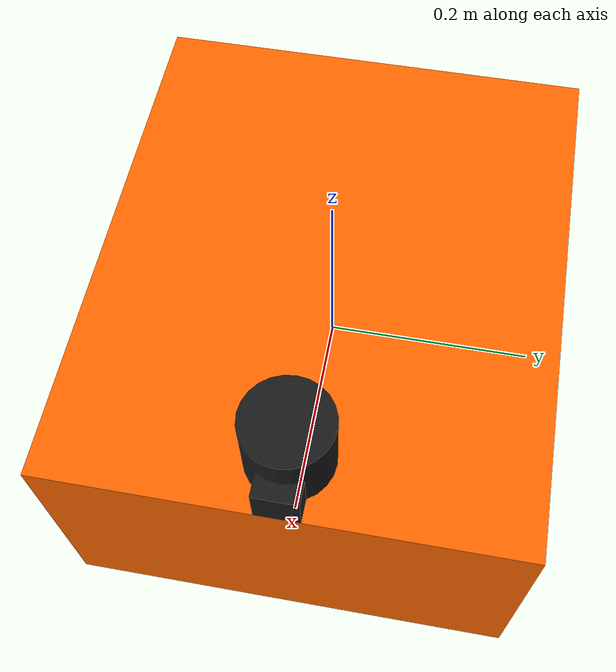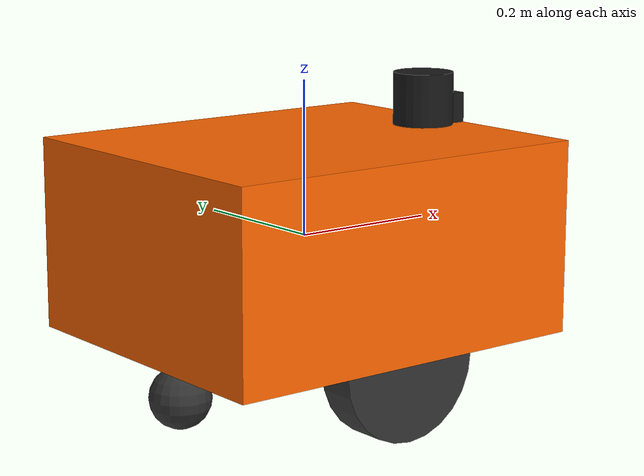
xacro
<?xml version="1.0"?>
<robot name="study_robot" xmlns:xacro="http://www.ros.org/wiki/xacro">

  <!-- Boyutlar: 0.51 x 0.43 x 0.25 m -->
  <xacro:property name="base_length" value="0.51"/>
  <xacro:property name="base_width"  value="0.43"/>
  <xacro:property name="base_height" value="0.25"/>
  <xacro:property name="wheel_radius" value="0.098"/>
  <xacro:property name="wheel_width"  value="0.05"/>
  <xacro:property name="wheel_sep"    value="0.37"/>  <!-- merkez-merkez y -->

  <!-- ============ BASE ============ -->
  <link name="base_link">
    <inertial>
      <mass value="20.0"/>
      <origin xyz="0 0 0" rpy="0 0 0"/>
      <inertia ixx="0.3" ixy="0" ixz="0"
               iyy="0.5" iyz="0"
               izz="0.6"/>
    </inertial>
    <visual>
      <origin xyz="0 0 0" rpy="0 0 0"/>
      <geometry>
        <box size="${base_length} ${base_width} ${base_height}"/>
      </geometry>
      <material name="orange">
        <color rgba="1.0 0.4 0.0 1"/>
      </material>
    </visual>
    <collision>
      <origin xyz="0 0 0" rpy="0 0 0"/>
      <geometry>
        <box size="${base_length} ${base_width} ${base_height}"/>
      </geometry>
    </collision>
  </link>

  <!-- ============ SOL TEKERLEK ============ -->
  <link name="wheel_left_link">
    <inertial>
      <mass value="1.5"/>
      <origin xyz="0 0 0" rpy="0 0 0"/>
      <inertia ixx="0.007" ixy="0" ixz="0"
               iyy="0.007" iyz="0"
               izz="0.012"/>
    </inertial>
    <visual>
      <origin xyz="0 0 0" rpy="1.5708 0 0"/>
      <geometry>
        <cylinder radius="${wheel_radius}" length="${wheel_width}"/>
      </geometry>
      <material name="dark_grey">
        <color rgba="0.2 0.2 0.2 1"/>
      </material>
    </visual>
    <collision>
      <origin xyz="0 0 0" rpy="1.5708 0 0"/>
      <geometry>
        <cylinder radius="${wheel_radius}" length="${wheel_width}"/>
      </geometry>
    </collision>
  </link>

  <joint name="wheel_left_joint" type="continuous">
    <parent link="base_link"/>
    <child  link="wheel_left_link"/>
    <origin xyz="0 ${wheel_sep/2} ${-base_height/2}" rpy="0 0 0"/>
    <axis xyz="0 1 0"/>
  </joint>

  <!-- ============ SAĞ TEKERLEK ============ -->
  <link name="wheel_right_link">
    <inertial>
      <mass value="1.5"/>
      <origin xyz="0 0 0" rpy="0 0 0"/>
      <inertia ixx="0.007" ixy="0" ixz="0"
               iyy="0.007" iyz="0"
               izz="0.012"/>
    </inertial>
    <visual>
      <origin xyz="0 0 0" rpy="1.5708 0 0"/>
      <geometry>
        <cylinder radius="${wheel_radius}" length="${wheel_width}"/>
      </geometry>
      <material name="dark_grey"/>
    </visual>
    <collision>
      <origin xyz="0 0 0" rpy="1.5708 0 0"/>
      <geometry>
        <cylinder radius="${wheel_radius}" length="${wheel_width}"/>
      </geometry>
    </collision>
  </link>

  <joint name="wheel_right_joint" type="continuous">
    <parent link="base_link"/>
    <child  link="wheel_right_link"/>
    <origin xyz="0 ${-wheel_sep/2} ${-base_height/2}" rpy="0 0 0"/>
    <axis xyz="0 1 0"/>
  </joint>

  <!-- Ön destek (caster) -->
  <link name="caster_front_link">
    <inertial>
      <mass value="0.1"/>
      <inertia ixx="0.0001" ixy="0" ixz="0"
               iyy="0.0001" iyz="0" izz="0.0001"/>
    </inertial>
    <visual>
      <geometry><sphere radius="0.04"/></geometry>
      <material name="dark_grey"/>
    </visual>
    <collision>
      <geometry><sphere radius="0.04"/></geometry>
      <surface>
        <friction><ode><mu>0.0</mu><mu2>0.0</mu2></ode></friction>
      </surface>
    </collision>
  </link>
  <joint name="caster_front_joint" type="fixed">
    <parent link="base_link"/>
    <child  link="caster_front_link"/>
    <origin xyz="${base_length/2 - 0.06} 0 ${-base_height/2 - 0.055}" rpy="0 0 0"/>
  </joint>

  <!-- Arka destek (caster) -->
  <link name="caster_back_link">
    <inertial>
      <mass value="0.1"/>
      <inertia ixx="0.0001" ixy="0" ixz="0"
               iyy="0.0001" iyz="0" izz="0.0001"/>
    </inertial>
    <visual>
      <geometry><sphere radius="0.04"/></geometry>
      <material name="dark_grey"/>
    </visual>
    <collision>
      <geometry><sphere radius="0.04"/></geometry>
      <surface>
        <friction><ode><mu>0.0</mu><mu2>0.0</mu2></ode></friction>
      </surface>
    </collision>
  </link>
  <joint name="caster_back_joint" type="fixed">
    <parent link="base_link"/>
    <child  link="caster_back_link"/>
    <origin xyz="${-(base_length/2 - 0.06)} 0 ${-base_height/2 - 0.055}" rpy="0 0 0"/>
  </joint>

  <!-- ============ LiDAR ============ -->
  <link name="lidar_link">
    <visual>
      <geometry><cylinder radius="0.04" length="0.07"/></geometry>
      <material name="black"><color rgba="0.1 0.1 0.1 1"/></material>
    </visual>
    <collision>
      <geometry><cylinder radius="0.04" length="0.07"/></geometry>
    </collision>
    <inertial>
      <mass value="0.2"/>
      <inertia ixx="0.0001" ixy="0" ixz="0"
               iyy="0.0001" iyz="0" izz="0.0001"/>
    </inertial>
  </link>
  <joint name="lidar_joint" type="fixed">
    <parent link="base_link"/>
    <child  link="lidar_link"/>
    <origin xyz="0.2 0 ${base_height/2 + 0.035}" rpy="0 0 0"/>
  </joint>

  <!-- ============ RGB KAMERA ============ -->
  <link name="camera_link">
    <visual>
      <geometry><box size="0.04 0.04 0.04"/></geometry>
      <material name="black"/>
    </visual>
    <inertial>
      <mass value="0.1"/>
      <inertia ixx="0.00001" ixy="0" ixz="0"
               iyy="0.00001" iyz="0" izz="0.00001"/>
    </inertial>
  </link>
  <joint name="camera_joint" type="fixed">
    <parent link="base_link"/>
    <child  link="camera_link"/>
    <!-- Kamera kutusu (0.04 m) gövdenin içinde kalır: ön yüzey = base_length/2 = 0.255 m
         (config/study_params.yaml: robot_front_offset) -->
    <origin xyz="${base_length/2 - 0.02} 0 ${base_height/2 + 0.02}" rpy="0 0 0"/>
  </joint>

  <!-- ============ GAZEBO PLUGİNLERİ ============ -->
  <gazebo>
    <!-- Diferansiyel sürücü -->
    <plugin name="diff_drive" filename="libgazebo_ros_diff_drive.so">
      <ros>
        <namespace></namespace>
        <remapping>cmd_vel:=/cmd_vel</remapping>
        <remapping>odom:=/robot/odom_raw</remapping>
      </ros>
      <update_rate>50</update_rate>
      <left_joint>wheel_left_joint</left_joint>
      <right_joint>wheel_right_joint</right_joint>
      <wheel_separation>${wheel_sep}</wheel_separation>
      <wheel_diameter>${2*wheel_radius}</wheel_diameter>
      <max_wheel_torque>50</max_wheel_torque>
      <max_wheel_acceleration>5.0</max_wheel_acceleration>
      <!-- Not: Humble diff_drive eklentisi hız limiti etiketi okumaz; 2.0 m/s ve 1.5 rad/s
           limitleri follower_node'da (v_max, w_max) uygulanır. -->
      <publish_odom>true</publish_odom>
      <publish_odom_tf>false</publish_odom_tf>
      <publish_wheel_tf>false</publish_wheel_tf>
      <odometry_frame>odom</odometry_frame>
      <robot_base_frame>base_link</robot_base_frame>
    </plugin>

    <!-- Ground-truth odom (p3d) -->
    <plugin name="robot_p3d" filename="libgazebo_ros_p3d.so">
      <ros>
        <namespace></namespace>
        <remapping>odom:=/robot/odom</remapping>
      </ros>
      <body_name>base_link</body_name>
      <frame_name>world</frame_name>
      <update_rate>50</update_rate>
      <xyz_offset>0 0 0</xyz_offset>
      <rpy_offset>0 0 0</rpy_offset>
    </plugin>
  </gazebo>

  <!-- Çarpışma algılama: gövde kutusunun temasları /robot/bumper'a yayınlanır -->
  <gazebo reference="base_link">
    <sensor name="bumper" type="contact">
      <always_on>true</always_on>
      <update_rate>50</update_rate>
      <contact>
        <collision>base_link_collision</collision>
      </contact>
      <plugin name="bumper_plugin" filename="libgazebo_ros_bumper.so">
        <ros>
          <namespace>/robot</namespace>
          <remapping>bumper_states:=bumper</remapping>
        </ros>
        <frame_name>base_link</frame_name>
      </plugin>
    </sensor>
  </gazebo>

  <!-- LiDAR Gazebo sensor -->
  <gazebo reference="lidar_link">
    <sensor name="lidar" type="ray">
      <always_on>true</always_on>
      <visualize>false</visualize>
      <update_rate>10</update_rate>
      <ray>
        <scan>
          <horizontal>
            <samples>360</samples>
            <resolution>1</resolution>
            <min_angle>-3.14159</min_angle>
            <max_angle>3.14159</max_angle>
          </horizontal>
        </scan>
        <range>
          <min>0.12</min>
          <max>10.0</max>
          <resolution>0.015</resolution>
        </range>
      </ray>
      <plugin name="lidar_plugin" filename="libgazebo_ros_ray_sensor.so">
        <ros>
          <namespace></namespace>
          <remapping>~/out:=/scan</remapping>
        </ros>
        <output_type>sensor_msgs/LaserScan</output_type>
        <frame_name>lidar_link</frame_name>
      </plugin>
    </sensor>
  </gazebo>

  <!-- RGB kamera Gazebo sensor -->
  <gazebo reference="camera_link">
    <sensor name="robot_cam" type="camera">
      <always_on>true</always_on>
      <update_rate>15</update_rate>
      <camera>
        <horizontal_fov>1.0472</horizontal_fov>
        <image>
          <width>640</width>
          <height>480</height>
          <format>R8G8B8</format>
        </image>
        <clip><near>0.1</near><far>20</far></clip>
      </camera>
      <plugin name="robot_cam_plugin" filename="libgazebo_ros_camera.so">
        <ros>
          <namespace>/robot</namespace>
        </ros>
        <camera_name>camera</camera_name>
        <frame_name>camera_link</frame_name>
      </plugin>
    </sensor>
  </gazebo>

  <!-- Tekerlekler için sürtünme -->
  <gazebo reference="wheel_left_link">
    <mu1>1.0</mu1><mu2>1.0</mu2>
    <kp>1e6</kp><kd>1.0</kd>
  </gazebo>
  <gazebo reference="wheel_right_link">
    <mu1>1.0</mu1><mu2>1.0</mu2>
    <kp>1e6</kp><kd>1.0</kd>
  </gazebo>

</robot>
